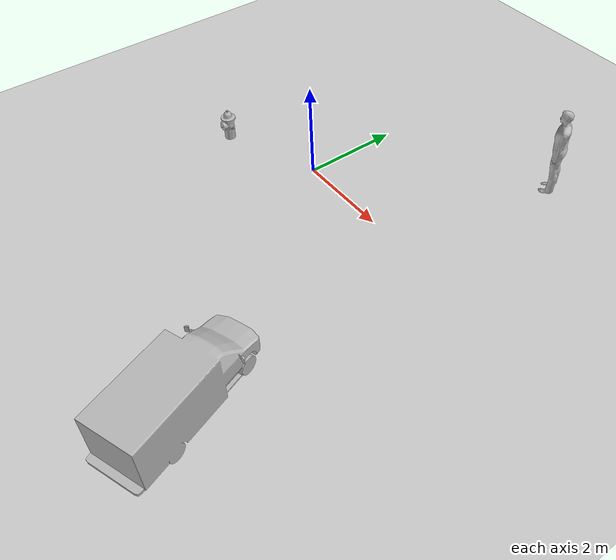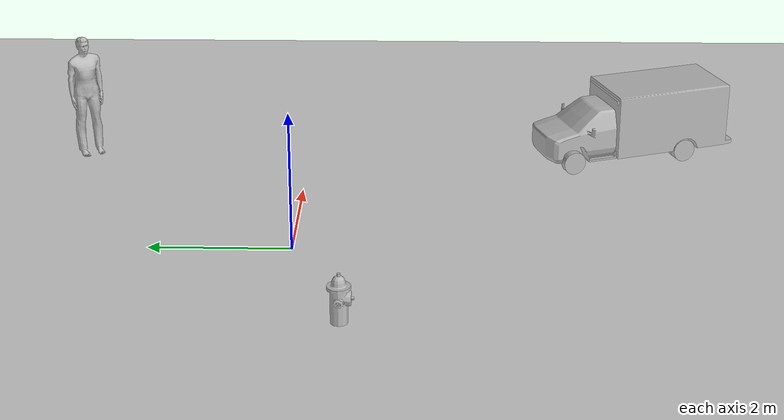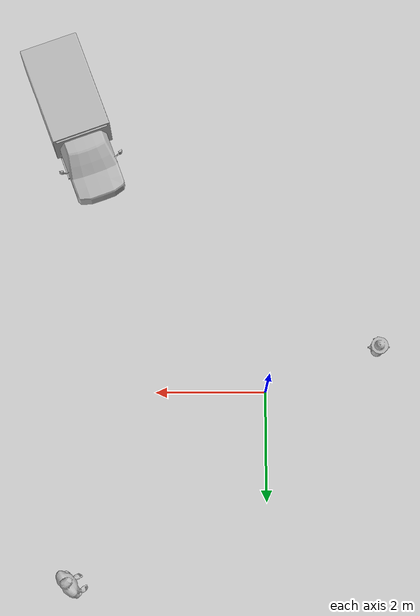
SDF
<?xml version="1.0"?>
<sdf version="1.6">
  <world name='default'>
    <include>
      <uri>model://ground_plane</uri>
    </include>
    <include>
      <uri>model://sun</uri>
    </include>
    <model name="person_standing">
      <link name="link">
        <inertial>
          <pose>3.464 3.5 0.0 0 0 -1.0472</pose>
          <mass>80.0</mass>
          <inertia>
            <ixx>24.88</ixx>
            <ixy>0</ixy>
            <ixz>0</ixz>
            <iyy>25.73</iyy>
            <iyz>0</iyz>
            <izz>2.48</izz>
          </inertia>
        </inertial>

        <collision name="bottom">
          <pose>3.464 3.5 0.0 0 0 -1.0472</pose>
          <geometry>
            <box>
              <size>0.001 0.001 0.001</size>
            </box>
          </geometry>
        </collision>

        <visual name="visual">
          <pose>3.464 3.5 0.0 0 0 -1.0472</pose>
            <geometry>
            <mesh>
              <uri>model://person_standing/meshes/standing.dae</uri>
            </mesh>
          </geometry>
        </visual>
      </link>
    </model>
   <model name="ambulance">
    <static>true</static>
    <link name="link">
      <visual name="visual">
        <pose>3.5 -5.0622 0.0 0.0 0 3.4907</pose>
        <geometry>
          <mesh>
            <scale>0.0104 0.0104 0.0104</scale>
            <uri>model://ambulance/meshes/ambulance.obj</uri>
          </mesh>
        </geometry>
      </visual>
    </link>
  </model>
  <model name="fire_hydrant">
    <static>true</static>
    <link name="link">
      <visual name="visual">
        <pose>-2.0588 -0.7681 -0.25 0 0.0 0.0</pose>
        <geometry>
          <mesh>
            <uri>model://fire_hydrant/meshes/fire_hydrant.dae</uri>
          </mesh>
        </geometry>
      </visual>
    </link>
  </model>
</world>
</sdf>
